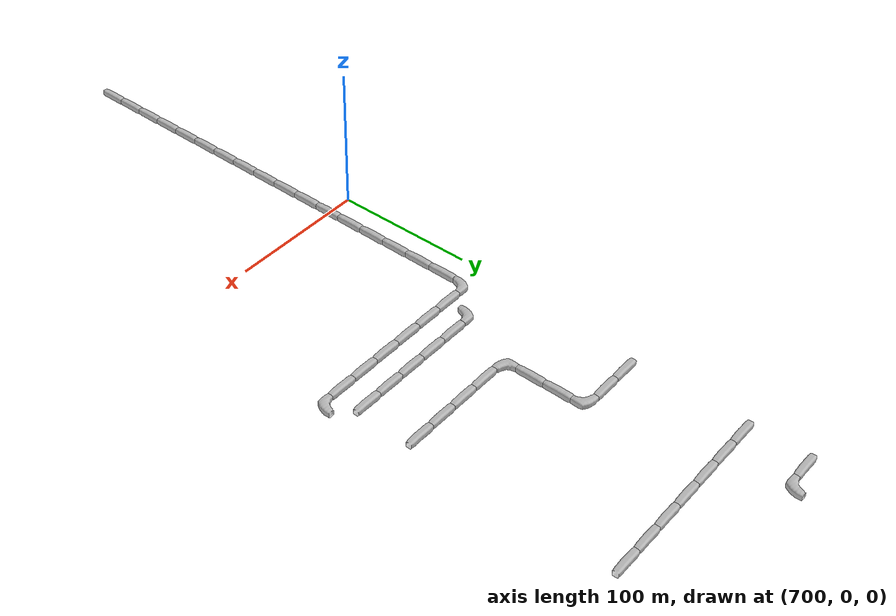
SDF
<sdf version="1.6">
 <world name="cave_16000_32">
  <include>
   <static>true</static>
   <name>cave_36_12</name>
   <pose>720 240 0 0 0 1.5707963267948966</pose>
   <uri>model://cave_straight_20m</uri>
  </include>
  <include>
   <static>true</static>
   <name>cave_37_12</name>
   <pose>740 240 0 0 0 1.5707963267948966</pose>
   <uri>model://cave_straight_20m</uri>
  </include>
  <include>
   <static>true</static>
   <name>cave_38_12</name>
   <pose>760 240 0 0 0 3.141592653589793</pose>
   <uri>model://cave_L_20m</uri>
  </include>
  <include>
   <static>true</static>
   <name>cave_38_11</name>
   <pose>760 220 0 0 0 0.0</pose>
   <uri>model://cave_straight_20m</uri>
  </include>
  <include>
   <static>true</static>
   <name>cave_38_10</name>
   <pose>760 200 0 0 0 0.0</pose>
   <uri>model://cave_straight_20m</uri>
  </include>
  <include>
   <static>true</static>
   <name>cave_38_9</name>
   <pose>760 180 0 0 0 0.0</pose>
   <uri>model://cave_L_20m</uri>
  </include>
  <include>
   <static>true</static>
   <name>cave_39_9</name>
   <pose>780 180 0 0 0 1.5707963267948966</pose>
   <uri>model://cave_straight_20m</uri>
  </include>
  <include>
   <static>true</static>
   <name>cave_40_9</name>
   <pose>800 180 0 0 0 1.5707963267948966</pose>
   <uri>model://cave_straight_20m</uri>
  </include>
  <include>
   <static>true</static>
   <name>cave_41_9</name>
   <pose>820 180 0 0 0 1.5707963267948966</pose>
   <uri>model://cave_straight_20m</uri>
  </include>
  <include>
   <static>true</static>
   <name>cave_42_9</name>
   <pose>840 180 0 0 0 1.5707963267948966</pose>
   <uri>model://cave_straight_20m</uri>
  </include>
  <include>
   <static>true</static>
   <name>cave_43_6</name>
   <pose>860 120 0 0 0 1.5707963267948966</pose>
   <uri>model://cave_L_20m</uri>
  </include>
  <include>
   <static>true</static>
   <name>cave_42_6</name>
   <pose>840 120 0 0 0 1.5707963267948966</pose>
   <uri>model://cave_straight_20m</uri>
  </include>
  <include>
   <static>true</static>
   <name>cave_41_6</name>
   <pose>820 120 0 0 0 1.5707963267948966</pose>
   <uri>model://cave_straight_20m</uri>
  </include>
  <include>
   <static>true</static>
   <name>cave_40_6</name>
   <pose>800 120 0 0 0 1.5707963267948966</pose>
   <uri>model://cave_straight_20m</uri>
  </include>
  <include>
   <static>true</static>
   <name>cave_39_6</name>
   <pose>780 120 0 0 0 1.5707963267948966</pose>
   <uri>model://cave_straight_20m</uri>
  </include>
  <include>
   <static>true</static>
   <name>cave_38_6</name>
   <pose>760 120 0 0 0 1.5707963267948966</pose>
   <uri>model://cave_straight_20m</uri>
  </include>
  <include>
   <static>true</static>
   <name>cave_37_6</name>
   <pose>740 120 0 0 0 1.5707963267948966</pose>
   <uri>model://cave_straight_20m</uri>
  </include>
  <include>
   <static>true</static>
   <name>cave_36_6</name>
   <pose>720 120 0 0 0 -1.5707963267948966</pose>
   <uri>model://cave_L_20m</uri>
  </include>
  <include>
   <static>true</static>
   <name>cave_36_5</name>
   <pose>720 100 0 0 0 0.0</pose>
   <uri>model://cave_straight_20m</uri>
  </include>
  <include>
   <static>true</static>
   <name>cave_36_4</name>
   <pose>720 80 0 0 0 0.0</pose>
   <uri>model://cave_straight_20m</uri>
  </include>
  <include>
   <static>true</static>
   <name>cave_36_3</name>
   <pose>720 60 0 0 0 0.0</pose>
   <uri>model://cave_straight_20m</uri>
  </include>
  <include>
   <static>true</static>
   <name>cave_36_2</name>
   <pose>720 40 0 0 0 0.0</pose>
   <uri>model://cave_straight_20m</uri>
  </include>
  <include>
   <static>true</static>
   <name>cave_36_1</name>
   <pose>720 20 0 0 0 0.0</pose>
   <uri>model://cave_straight_20m</uri>
  </include>
  <include>
   <static>true</static>
   <name>cave_36_0</name>
   <pose>720 0 0 0 0 0.0</pose>
   <uri>model://cave_straight_20m</uri>
  </include>
  <include>
   <static>true</static>
   <name>cave_36_-1</name>
   <pose>720 -20 0 0 0 0.0</pose>
   <uri>model://cave_straight_20m</uri>
  </include>
  <include>
   <static>true</static>
   <name>cave_36_-2</name>
   <pose>720 -40 0 0 0 0.0</pose>
   <uri>model://cave_straight_20m</uri>
  </include>
  <include>
   <static>true</static>
   <name>cave_36_-3</name>
   <pose>720 -60 0 0 0 0.0</pose>
   <uri>model://cave_straight_20m</uri>
  </include>
  <include>
   <static>true</static>
   <name>cave_36_-4</name>
   <pose>720 -80 0 0 0 0.0</pose>
   <uri>model://cave_straight_20m</uri>
  </include>
  <include>
   <static>true</static>
   <name>cave_36_-5</name>
   <pose>720 -100 0 0 0 0.0</pose>
   <uri>model://cave_straight_20m</uri>
  </include>
  <include>
   <static>true</static>
   <name>cave_36_-6</name>
   <pose>720 -120 0 0 0 0.0</pose>
   <uri>model://cave_straight_20m</uri>
  </include>
  <include>
   <static>true</static>
   <name>cave_36_-7</name>
   <pose>720 -140 0 0 0 0.0</pose>
   <uri>model://cave_straight_20m</uri>
  </include>
  <include>
   <static>true</static>
   <name>cave_36_-8</name>
   <pose>720 -160 0 0 0 0.0</pose>
   <uri>model://cave_straight_20m</uri>
  </include>
  <include>
   <static>true</static>
   <name>cave_36_-9</name>
   <pose>720 -180 0 0 0 0.0</pose>
   <uri>model://cave_straight_20m</uri>
  </include>
  <include>
   <static>true</static>
   <name>cave_36_-10</name>
   <pose>720 -200 0 0 0 0.0</pose>
   <uri>model://cave_straight_20m</uri>
  </include>
  <include>
   <static>true</static>
   <name>cave_36_-11</name>
   <pose>720 -220 0 0 0 0.0</pose>
   <uri>model://cave_straight_20m</uri>
  </include>
  <include>
   <static>true</static>
   <name>cave_42_7</name>
   <pose>840 140 0 0 0 1.5707963267948966</pose>
   <uri>model://cave_straight_20m</uri>
  </include>
  <include>
   <static>true</static>
   <name>cave_41_7</name>
   <pose>820 140 0 0 0 1.5707963267948966</pose>
   <uri>model://cave_straight_20m</uri>
  </include>
  <include>
   <static>true</static>
   <name>cave_40_7</name>
   <pose>800 140 0 0 0 1.5707963267948966</pose>
   <uri>model://cave_straight_20m</uri>
  </include>
  <include>
   <static>true</static>
   <name>cave_39_7</name>
   <pose>780 140 0 0 0 1.5707963267948966</pose>
   <uri>model://cave_straight_20m</uri>
  </include>
  <include>
   <static>true</static>
   <name>cave_38_7</name>
   <pose>760 140 0 0 0 1.5707963267948966</pose>
   <uri>model://cave_straight_20m</uri>
  </include>
  <include>
   <static>true</static>
   <name>cave_37_7</name>
   <pose>740 140 0 0 0 -1.5707963267948966</pose>
   <uri>model://cave_L_20m</uri>
  </include>
  <include>
   <static>true</static>
   <name>cave_36_16</name>
   <pose>720 320 0 0 0 1.5707963267948966</pose>
   <uri>model://cave_straight_20m</uri>
  </include>
  <include>
   <static>true</static>
   <name>cave_37_16</name>
   <pose>740 320 0 0 0 1.5707963267948966</pose>
   <uri>model://cave_straight_20m</uri>
  </include>
  <include>
   <static>true</static>
   <name>cave_38_16</name>
   <pose>760 320 0 0 0 1.5707963267948966</pose>
   <uri>model://cave_straight_20m</uri>
  </include>
  <include>
   <static>true</static>
   <name>cave_39_16</name>
   <pose>780 320 0 0 0 1.5707963267948966</pose>
   <uri>model://cave_straight_20m</uri>
  </include>
  <include>
   <static>true</static>
   <name>cave_40_16</name>
   <pose>800 320 0 0 0 1.5707963267948966</pose>
   <uri>model://cave_straight_20m</uri>
  </include>
  <include>
   <static>true</static>
   <name>cave_41_16</name>
   <pose>820 320 0 0 0 1.5707963267948966</pose>
   <uri>model://cave_straight_20m</uri>
  </include>
  <include>
   <static>true</static>
   <name>cave_42_16</name>
   <pose>840 320 0 0 0 1.5707963267948966</pose>
   <uri>model://cave_straight_20m</uri>
  </include>
  <include>
   <static>true</static>
   <name>cave_36_18</name>
   <pose>720 360 0 0 0 1.5707963267948966</pose>
   <uri>model://cave_straight_20m</uri>
  </include>
  <include>
   <static>true</static>
   <name>cave_37_18</name>
   <pose>740 360 0 0 0 1.5707963267948966</pose>
   <uri>model://cave_L_20m</uri>
  </include>
 </world>
</sdf>
